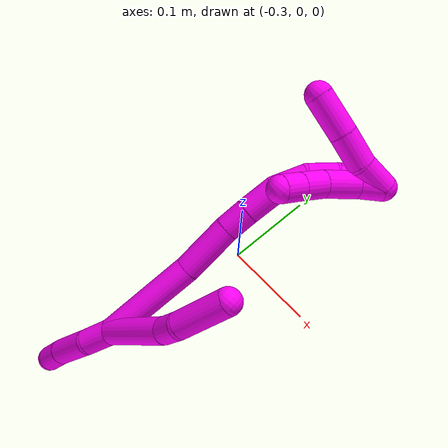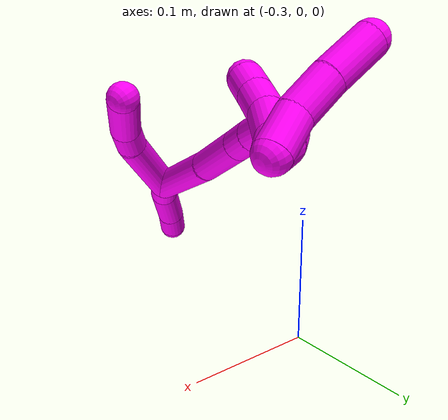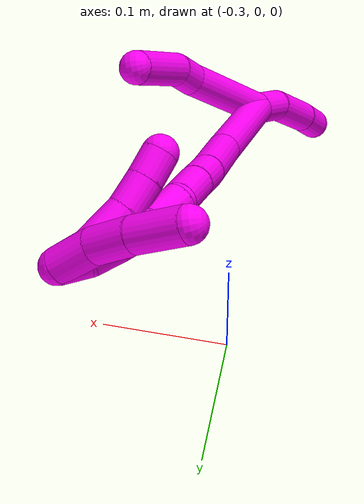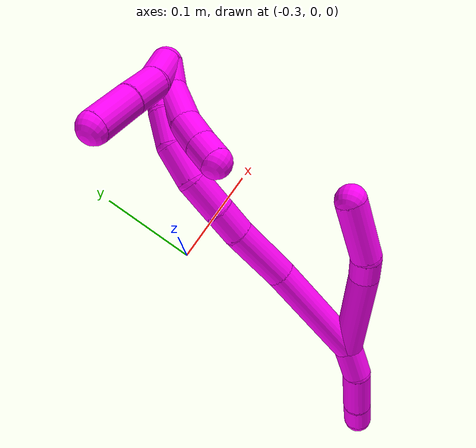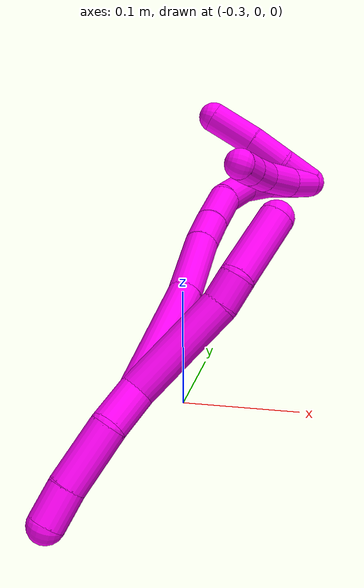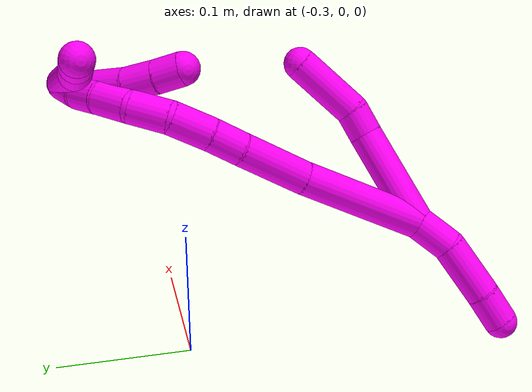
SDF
<sdf version="1.7">
 <world name="default">
  <model name="10">
   <static>0</static>
   <link name="10">
    <collision name="collision-cylinder-e_1_2_8">
     <pose>0.023771 0.024544 -0.017041 -2.17771 0.672024 -1.17742</pose>
     <geometry><cylinder><radius>0.0125</radius><length>0.076364</length></cylinder></geometry>
     <surface>
      <friction><ode><mu>1.16</mu><mu2>1.16</mu2><slip1>0</slip1><slip2>0</slip2></ode></friction>
      <contact><ode><kp>1e+06</kp><kd>1</kd><max_vel>0</max_vel><min_depth>0.001</min_depth></ode></contact>
     </surface>
    </collision>
    <visual name="visual-cylinder-e_1_2_8">
     <pose>0.023771 0.024544 -0.017041 -2.17771 0.672024 -1.17742</pose>
     <geometry><cylinder><radius>0.0125</radius><length>0.076364</length></cylinder></geometry>
     <material><ambient>1 0 0.964706 1</ambient></material>
    </visual>
    <collision name="collision-cylinder-e_2_8_9">
     <pose>0.054273 0.056824 -0.036768 -1.90487 0.687937 -0.932884</pose>
     <geometry><cylinder><radius>0.0125</radius><length>0.021201</length></cylinder></geometry>
     <surface>
      <friction><ode><mu>1.16</mu><mu2>1.16</mu2><slip1>0</slip1><slip2>0</slip2></ode></friction>
      <contact><ode><kp>1e+06</kp><kd>1</kd><max_vel>0</max_vel><min_depth>0.001</min_depth></ode></contact>
     </surface>
    </collision>
    <visual name="visual-cylinder-e_2_8_9">
     <pose>0.054273 0.056824 -0.036768 -1.90487 0.687937 -0.932884</pose>
     <geometry><cylinder><radius>0.0125</radius><length>0.021201</length></cylinder></geometry>
     <material><ambient>1 0 0.964706 1</ambient></material>
    </visual>
    <collision name="collision-cylinder-e_3_9_6">
     <pose>0.070155 0.087906 -0.047109 -1.88769 0.35658 -0.487594</pose>
     <geometry><cylinder><radius>0.0125</radius><length>0.052435</length></cylinder></geometry>
     <surface>
      <friction><ode><mu>1.16</mu><mu2>1.16</mu2><slip1>0</slip1><slip2>0</slip2></ode></friction>
      <contact><ode><kp>1e+06</kp><kd>1</kd><max_vel>0</max_vel><min_depth>0.001</min_depth></ode></contact>
     </surface>
    </collision>
    <visual name="visual-cylinder-e_3_9_6">
     <pose>0.070155 0.087906 -0.047109 -1.88769 0.35658 -0.487594</pose>
     <geometry><cylinder><radius>0.0125</radius><length>0.052435</length></cylinder></geometry>
     <material><ambient>1 0 0.964706 1</ambient></material>
    </visual>
    <collision name="collision-cylinder-e_1_2_10">
     <pose>-0.004088 -0.013258 0.005399 1.18404 -0.278167 -0.187726</pose>
     <geometry><cylinder><radius>0.0125</radius><length>0.029774</length></cylinder></geometry>
     <surface>
      <friction><ode><mu>1.16</mu><mu2>1.16</mu2><slip1>0</slip1><slip2>0</slip2></ode></friction>
      <contact><ode><kp>1e+06</kp><kd>1</kd><max_vel>0</max_vel><min_depth>0.001</min_depth></ode></contact>
     </surface>
    </collision>
    <visual name="visual-cylinder-e_1_2_10">
     <pose>-0.004088 -0.013258 0.005399 1.18404 -0.278167 -0.187726</pose>
     <geometry><cylinder><radius>0.0125</radius><length>0.029774</length></cylinder></geometry>
     <material><ambient>1 0 0.964706 1</ambient></material>
    </visual>
    <collision name="collision-cylinder-e_2_10_11">
     <pose>-0.020525 -0.043933 0.017381 1.2095 -0.585597 -0.410824</pose>
     <geometry><cylinder><radius>0.0125</radius><length>0.044686</length></cylinder></geometry>
     <surface>
      <friction><ode><mu>1.16</mu><mu2>1.16</mu2><slip1>0</slip1><slip2>0</slip2></ode></friction>
      <contact><ode><kp>1e+06</kp><kd>1</kd><max_vel>0</max_vel><min_depth>0.001</min_depth></ode></contact>
     </surface>
    </collision>
    <visual name="visual-cylinder-e_2_10_11">
     <pose>-0.020525 -0.043933 0.017381 1.2095 -0.585597 -0.410824</pose>
     <geometry><cylinder><radius>0.0125</radius><length>0.044686</length></cylinder></geometry>
     <material><ambient>1 0 0.964706 1</ambient></material>
    </visual>
    <collision name="collision-cylinder-e_3_11_5">
     <pose>-0.040237 -0.071452 0.026574 1.31785 -0.614624 -0.481977</pose>
     <geometry><cylinder><radius>0.0125</radius><length>0.02554</length></cylinder></geometry>
     <surface>
      <friction><ode><mu>1.16</mu><mu2>1.16</mu2><slip1>0</slip1><slip2>0</slip2></ode></friction>
      <contact><ode><kp>1e+06</kp><kd>1</kd><max_vel>0</max_vel><min_depth>0.001</min_depth></ode></contact>
     </surface>
    </collision>
    <visual name="visual-cylinder-e_3_11_5">
     <pose>-0.040237 -0.071452 0.026574 1.31785 -0.614624 -0.481977</pose>
     <geometry><cylinder><radius>0.0125</radius><length>0.02554</length></cylinder></geometry>
     <material><ambient>1 0 0.964706 1</ambient></material>
    </visual>
    <collision name="collision-cylinder-e_1_2_12">
     <pose>0.000236 0.04667 -0.007348 -1.72696 0.005003 -0.005852</pose>
     <geometry><cylinder><radius>0.0125</radius><length>0.09449</length></cylinder></geometry>
     <surface>
      <friction><ode><mu>1.16</mu><mu2>1.16</mu2><slip1>0</slip1><slip2>0</slip2></ode></friction>
      <contact><ode><kp>1e+06</kp><kd>1</kd><max_vel>0</max_vel><min_depth>0.001</min_depth></ode></contact>
     </surface>
    </collision>
    <visual name="visual-cylinder-e_1_2_12">
     <pose>0.000236 0.04667 -0.007348 -1.72696 0.005003 -0.005852</pose>
     <geometry><cylinder><radius>0.0125</radius><length>0.09449</length></cylinder></geometry>
     <material><ambient>1 0 0.964706 1</ambient></material>
    </visual>
    <collision name="collision-cylinder-e_2_12_13">
     <pose>0.002131 0.119609 -0.016094 -1.62395 0.062955 -0.066391</pose>
     <geometry><cylinder><radius>0.0125</radius><length>0.052718</length></cylinder></geometry>
     <surface>
      <friction><ode><mu>1.16</mu><mu2>1.16</mu2><slip1>0</slip1><slip2>0</slip2></ode></friction>
      <contact><ode><kp>1e+06</kp><kd>1</kd><max_vel>0</max_vel><min_depth>0.001</min_depth></ode></contact>
     </surface>
    </collision>
    <visual name="visual-cylinder-e_2_12_13">
     <pose>0.002131 0.119609 -0.016094 -1.62395 0.062955 -0.066391</pose>
     <geometry><cylinder><radius>0.0125</radius><length>0.052718</length></cylinder></geometry>
     <material><ambient>1 0 0.964706 1</ambient></material>
    </visual>
    <collision name="collision-cylinder-e_3_13_14">
     <pose>0.004741 0.158098 -0.019293 -1.71717 0.07691 -0.089065</pose>
     <geometry><cylinder><radius>0.0125</radius><length>0.024777</length></cylinder></geometry>
     <surface>
      <friction><ode><mu>1.16</mu><mu2>1.16</mu2><slip1>0</slip1><slip2>0</slip2></ode></friction>
      <contact><ode><kp>1e+06</kp><kd>1</kd><max_vel>0</max_vel><min_depth>0.001</min_depth></ode></contact>
     </surface>
    </collision>
    <visual name="visual-cylinder-e_3_13_14">
     <pose>0.004741 0.158098 -0.019293 -1.71717 0.07691 -0.089065</pose>
     <geometry><cylinder><radius>0.0125</radius><length>0.024777</length></cylinder></geometry>
     <material><ambient>1 0 0.964706 1</ambient></material>
    </visual>
    <collision name="collision-cylinder-e_4_14_15">
     <pose>0.006137 0.185685 -0.023942 -1.75405 0.028382 -0.034125</pose>
     <geometry><cylinder><radius>0.0125</radius><length>0.031271</length></cylinder></geometry>
     <surface>
      <friction><ode><mu>1.16</mu><mu2>1.16</mu2><slip1>0</slip1><slip2>0</slip2></ode></friction>
      <contact><ode><kp>1e+06</kp><kd>1</kd><max_vel>0</max_vel><min_depth>0.001</min_depth></ode></contact>
     </surface>
    </collision>
    <visual name="visual-cylinder-e_4_14_15">
     <pose>0.006137 0.185685 -0.023942 -1.75405 0.028382 -0.034125</pose>
     <geometry><cylinder><radius>0.0125</radius><length>0.031271</length></cylinder></geometry>
     <material><ambient>1 0 0.964706 1</ambient></material>
    </visual>
    <collision name="collision-cylinder-e_5_15_16">
     <pose>0.005099 0.21403 -0.033757 -2.06348 -0.100213 0.167287</pose>
     <geometry><cylinder><radius>0.0125</radius><length>0.029606</length></cylinder></geometry>
     <surface>
      <friction><ode><mu>1.16</mu><mu2>1.16</mu2><slip1>0</slip1><slip2>0</slip2></ode></friction>
      <contact><ode><kp>1e+06</kp><kd>1</kd><max_vel>0</max_vel><min_depth>0.001</min_depth></ode></contact>
     </surface>
    </collision>
    <visual name="visual-cylinder-e_5_15_16">
     <pose>0.005099 0.21403 -0.033757 -2.06348 -0.100213 0.167287</pose>
     <geometry><cylinder><radius>0.0125</radius><length>0.029606</length></cylinder></geometry>
     <material><ambient>1 0 0.964706 1</ambient></material>
    </visual>
    <collision name="collision-cylinder-e_6_16_17">
     <pose>0.002654 0.235916 -0.050543 -2.40476 -0.0726 0.187592</pose>
     <geometry><cylinder><radius>0.0125</radius><length>0.026587</length></cylinder></geometry>
     <surface>
      <friction><ode><mu>1.16</mu><mu2>1.16</mu2><slip1>0</slip1><slip2>0</slip2></ode></friction>
      <contact><ode><kp>1e+06</kp><kd>1</kd><max_vel>0</max_vel><min_depth>0.001</min_depth></ode></contact>
     </surface>
    </collision>
    <visual name="visual-cylinder-e_6_16_17">
     <pose>0.002654 0.235916 -0.050543 -2.40476 -0.0726 0.187592</pose>
     <geometry><cylinder><radius>0.0125</radius><length>0.026587</length></cylinder></geometry>
     <material><ambient>1 0 0.964706 1</ambient></material>
    </visual>
    <collision name="collision-cylinder-e_7_17_18">
     <pose>0.000805 0.250085 -0.069028 -2.59599 -0.087111 0.309069</pose>
     <geometry><cylinder><radius>0.0125</radius><length>0.020352</length></cylinder></geometry>
     <surface>
      <friction><ode><mu>1.16</mu><mu2>1.16</mu2><slip1>0</slip1><slip2>0</slip2></ode></friction>
      <contact><ode><kp>1e+06</kp><kd>1</kd><max_vel>0</max_vel><min_depth>0.001</min_depth></ode></contact>
     </surface>
    </collision>
    <visual name="visual-cylinder-e_7_17_18">
     <pose>0.000805 0.250085 -0.069028 -2.59599 -0.087111 0.309069</pose>
     <geometry><cylinder><radius>0.0125</radius><length>0.020352</length></cylinder></geometry>
     <material><ambient>1 0 0.964706 1</ambient></material>
    </visual>
    <collision name="collision-cylinder-e_8_18_1">
     <pose>0.000978 0.259398 -0.086884 -2.72637 0.105013 -0.489</pose>
     <geometry><cylinder><radius>0.0125</radius><length>0.020199</length></cylinder></geometry>
     <surface>
      <friction><ode><mu>1.16</mu><mu2>1.16</mu2><slip1>0</slip1><slip2>0</slip2></ode></friction>
      <contact><ode><kp>1e+06</kp><kd>1</kd><max_vel>0</max_vel><min_depth>0.001</min_depth></ode></contact>
     </surface>
    </collision>
    <visual name="visual-cylinder-e_8_18_1">
     <pose>0.000978 0.259398 -0.086884 -2.72637 0.105013 -0.489</pose>
     <geometry><cylinder><radius>0.0125</radius><length>0.020199</length></cylinder></geometry>
     <material><ambient>1 0 0.964706 1</ambient></material>
    </visual>
    <collision name="collision-cylinder-e_1_1_19">
     <pose>0.003556 0.256968 -0.086776 0.608764 0.133244 0.041914</pose>
     <geometry><cylinder><radius>0.0125</radius><length>0.022872</length></cylinder></geometry>
     <surface>
      <friction><ode><mu>1.16</mu><mu2>1.16</mu2><slip1>0</slip1><slip2>0</slip2></ode></friction>
      <contact><ode><kp>1e+06</kp><kd>1</kd><max_vel>0</max_vel><min_depth>0.001</min_depth></ode></contact>
     </surface>
    </collision>
    <visual name="visual-cylinder-e_1_1_19">
     <pose>0.003556 0.256968 -0.086776 0.608764 0.133244 0.041914</pose>
     <geometry><cylinder><radius>0.0125</radius><length>0.022872</length></cylinder></geometry>
     <material><ambient>1 0 0.964706 1</ambient></material>
    </visual>
    <collision name="collision-cylinder-e_2_19_20">
     <pose>0.011299 0.240755 -0.065644 0.688209 0.385898 0.139805</pose>
     <geometry><cylinder><radius>0.0125</radius><length>0.033073</length></cylinder></geometry>
     <surface>
      <friction><ode><mu>1.16</mu><mu2>1.16</mu2><slip1>0</slip1><slip2>0</slip2></ode></friction>
      <contact><ode><kp>1e+06</kp><kd>1</kd><max_vel>0</max_vel><min_depth>0.001</min_depth></ode></contact>
     </surface>
    </collision>
    <visual name="visual-cylinder-e_2_19_20">
     <pose>0.011299 0.240755 -0.065644 0.688209 0.385898 0.139805</pose>
     <geometry><cylinder><radius>0.0125</radius><length>0.033073</length></cylinder></geometry>
     <material><ambient>1 0 0.964706 1</ambient></material>
    </visual>
    <collision name="collision-cylinder-e_3_20_21">
     <pose>0.02374 0.223883 -0.046838 0.797299 0.557069 0.239746</pose>
     <geometry><cylinder><radius>0.0125</radius><length>0.023518</length></cylinder></geometry>
     <surface>
      <friction><ode><mu>1.16</mu><mu2>1.16</mu2><slip1>0</slip1><slip2>0</slip2></ode></friction>
      <contact><ode><kp>1e+06</kp><kd>1</kd><max_vel>0</max_vel><min_depth>0.001</min_depth></ode></contact>
     </surface>
    </collision>
    <visual name="visual-cylinder-e_3_20_21">
     <pose>0.02374 0.223883 -0.046838 0.797299 0.557069 0.239746</pose>
     <geometry><cylinder><radius>0.0125</radius><length>0.023518</length></cylinder></geometry>
     <material><ambient>1 0 0.964706 1</ambient></material>
    </visual>
    <collision name="collision-cylinder-e_4_21_4">
     <pose>0.035834 0.21059 -0.034114 0.819075 0.609243 0.27128</pose>
     <geometry><cylinder><radius>0.0125</radius><length>0.020537</length></cylinder></geometry>
     <surface>
      <friction><ode><mu>1.16</mu><mu2>1.16</mu2><slip1>0</slip1><slip2>0</slip2></ode></friction>
      <contact><ode><kp>1e+06</kp><kd>1</kd><max_vel>0</max_vel><min_depth>0.001</min_depth></ode></contact>
     </surface>
    </collision>
    <visual name="visual-cylinder-e_4_21_4">
     <pose>0.035834 0.21059 -0.034114 0.819075 0.609243 0.27128</pose>
     <geometry><cylinder><radius>0.0125</radius><length>0.020537</length></cylinder></geometry>
     <material><ambient>1 0 0.964706 1</ambient></material>
    </visual>
    <collision name="collision-cylinder-e_1_1_22">
     <pose>0.006566 0.264266 -0.082058 -0.058215 0.312061 -0.00916</pose>
     <geometry><cylinder><radius>0.0125</radius><length>0.029504</length></cylinder></geometry>
     <surface>
      <friction><ode><mu>1.16</mu><mu2>1.16</mu2><slip1>0</slip1><slip2>0</slip2></ode></friction>
      <contact><ode><kp>1e+06</kp><kd>1</kd><max_vel>0</max_vel><min_depth>0.001</min_depth></ode></contact>
     </surface>
    </collision>
    <visual name="visual-cylinder-e_1_1_22">
     <pose>0.006566 0.264266 -0.082058 -0.058215 0.312061 -0.00916</pose>
     <geometry><cylinder><radius>0.0125</radius><length>0.029504</length></cylinder></geometry>
     <material><ambient>1 0 0.964706 1</ambient></material>
    </visual>
    <collision name="collision-cylinder-e_2_22_23">
     <pose>0.013733 0.269453 -0.053025 -0.283171 0.167102 -0.023873</pose>
     <geometry><cylinder><radius>0.0125</radius><length>0.031723</length></cylinder></geometry>
     <surface>
      <friction><ode><mu>1.16</mu><mu2>1.16</mu2><slip1>0</slip1><slip2>0</slip2></ode></friction>
      <contact><ode><kp>1e+06</kp><kd>1</kd><max_vel>0</max_vel><min_depth>0.001</min_depth></ode></contact>
     </surface>
    </collision>
    <visual name="visual-cylinder-e_2_22_23">
     <pose>0.013733 0.269453 -0.053025 -0.283171 0.167102 -0.023873</pose>
     <geometry><cylinder><radius>0.0125</radius><length>0.031723</length></cylinder></geometry>
     <material><ambient>1 0 0.964706 1</ambient></material>
    </visual>
    <collision name="collision-cylinder-e_3_23_3">
     <pose>0.018122 0.278871 -0.019372 -0.264542 0.090444 -0.012041</pose>
     <geometry><cylinder><radius>0.0125</radius><length>0.038773</length></cylinder></geometry>
     <surface>
      <friction><ode><mu>1.16</mu><mu2>1.16</mu2><slip1>0</slip1><slip2>0</slip2></ode></friction>
      <contact><ode><kp>1e+06</kp><kd>1</kd><max_vel>0</max_vel><min_depth>0.001</min_depth></ode></contact>
     </surface>
    </collision>
    <visual name="visual-cylinder-e_3_23_3">
     <pose>0.018122 0.278871 -0.019372 -0.264542 0.090444 -0.012041</pose>
     <geometry><cylinder><radius>0.0125</radius><length>0.038773</length></cylinder></geometry>
     <material><ambient>1 0 0.964706 1</ambient></material>
    </visual>
    <collision name="collision-sphere-3">
     <pose>0.019873 0.283919 -0.000736 0 -0 0</pose>
     <geometry><sphere><radius>0.0125</radius></sphere></geometry>
     <surface>
      <friction><ode><mu>1.16</mu><mu2>1.16</mu2><slip1>0</slip1><slip2>0</slip2></ode></friction>
      <contact><ode><kp>1e+06</kp><kd>1</kd><max_vel>0</max_vel><min_depth>0.001</min_depth></ode></contact>
     </surface>
    </collision>
    <visual name="visual-sphere-3">
     <pose>0.019873 0.283919 -0.000736 0 -0 0</pose>
     <geometry><sphere><radius>0.0125</radius></sphere></geometry>
     <material><ambient>1 0 0.964706 1</ambient></material>
    </visual>
    <collision name="collision-sphere-23">
     <pose>0.016371 0.273823 -0.038007 0 -0 0</pose>
     <geometry><sphere><radius>0.0125</radius></sphere></geometry>
     <surface>
      <friction><ode><mu>1.16</mu><mu2>1.16</mu2><slip1>0</slip1><slip2>0</slip2></ode></friction>
      <contact><ode><kp>1e+06</kp><kd>1</kd><max_vel>0</max_vel><min_depth>0.001</min_depth></ode></contact>
     </surface>
    </collision>
    <visual name="visual-sphere-23">
     <pose>0.016371 0.273823 -0.038007 0 -0 0</pose>
     <geometry><sphere><radius>0.0125</radius></sphere></geometry>
     <material><ambient>1 0 0.964706 1</ambient></material>
    </visual>
    <collision name="collision-sphere-22">
     <pose>0.011095 0.265083 -0.068043 0 -0 0</pose>
     <geometry><sphere><radius>0.0125</radius></sphere></geometry>
     <surface>
      <friction><ode><mu>1.16</mu><mu2>1.16</mu2><slip1>0</slip1><slip2>0</slip2></ode></friction>
      <contact><ode><kp>1e+06</kp><kd>1</kd><max_vel>0</max_vel><min_depth>0.001</min_depth></ode></contact>
     </surface>
    </collision>
    <visual name="visual-sphere-22">
     <pose>0.011095 0.265083 -0.068043 0 -0 0</pose>
     <geometry><sphere><radius>0.0125</radius></sphere></geometry>
     <material><ambient>1 0 0.964706 1</ambient></material>
    </visual>
    <collision name="collision-sphere-4">
     <pose>0.04171 0.204438 -0.028363 0 -0 0</pose>
     <geometry><sphere><radius>0.0125</radius></sphere></geometry>
     <surface>
      <friction><ode><mu>1.16</mu><mu2>1.16</mu2><slip1>0</slip1><slip2>0</slip2></ode></friction>
      <contact><ode><kp>1e+06</kp><kd>1</kd><max_vel>0</max_vel><min_depth>0.001</min_depth></ode></contact>
     </surface>
    </collision>
    <visual name="visual-sphere-4">
     <pose>0.04171 0.204438 -0.028363 0 -0 0</pose>
     <geometry><sphere><radius>0.0125</radius></sphere></geometry>
     <material><ambient>1 0 0.964706 1</ambient></material>
    </visual>
    <collision name="collision-sphere-21">
     <pose>0.029957 0.216742 -0.039865 0 -0 0</pose>
     <geometry><sphere><radius>0.0125</radius></sphere></geometry>
     <surface>
      <friction><ode><mu>1.16</mu><mu2>1.16</mu2><slip1>0</slip1><slip2>0</slip2></ode></friction>
      <contact><ode><kp>1e+06</kp><kd>1</kd><max_vel>0</max_vel><min_depth>0.001</min_depth></ode></contact>
     </surface>
    </collision>
    <visual name="visual-sphere-21">
     <pose>0.029957 0.216742 -0.039865 0 -0 0</pose>
     <geometry><sphere><radius>0.0125</radius></sphere></geometry>
     <material><ambient>1 0 0.964706 1</ambient></material>
    </visual>
    <collision name="collision-sphere-20">
     <pose>0.017523 0.231024 -0.053811 0 -0 0</pose>
     <geometry><sphere><radius>0.0125</radius></sphere></geometry>
     <surface>
      <friction><ode><mu>1.16</mu><mu2>1.16</mu2><slip1>0</slip1><slip2>0</slip2></ode></friction>
      <contact><ode><kp>1e+06</kp><kd>1</kd><max_vel>0</max_vel><min_depth>0.001</min_depth></ode></contact>
     </surface>
    </collision>
    <visual name="visual-sphere-20">
     <pose>0.017523 0.231024 -0.053811 0 -0 0</pose>
     <geometry><sphere><radius>0.0125</radius></sphere></geometry>
     <material><ambient>1 0 0.964706 1</ambient></material>
    </visual>
    <collision name="collision-sphere-11">
     <pose>-0.032873 -0.061351 0.023963 0 -0 0</pose>
     <geometry><sphere><radius>0.0125</radius></sphere></geometry>
     <surface>
      <friction><ode><mu>1.16</mu><mu2>1.16</mu2><slip1>0</slip1><slip2>0</slip2></ode></friction>
      <contact><ode><kp>1e+06</kp><kd>1</kd><max_vel>0</max_vel><min_depth>0.001</min_depth></ode></contact>
     </surface>
    </collision>
    <visual name="visual-sphere-11">
     <pose>-0.032873 -0.061351 0.023963 0 -0 0</pose>
     <geometry><sphere><radius>0.0125</radius></sphere></geometry>
     <material><ambient>1 0 0.964706 1</ambient></material>
    </visual>
    <collision name="collision-sphere-10">
     <pose>-0.008176 -0.026515 0.010799 0 -0 0</pose>
     <geometry><sphere><radius>0.0125</radius></sphere></geometry>
     <surface>
      <friction><ode><mu>1.16</mu><mu2>1.16</mu2><slip1>0</slip1><slip2>0</slip2></ode></friction>
      <contact><ode><kp>1e+06</kp><kd>1</kd><max_vel>0</max_vel><min_depth>0.001</min_depth></ode></contact>
     </surface>
    </collision>
    <visual name="visual-sphere-10">
     <pose>-0.008176 -0.026515 0.010799 0 -0 0</pose>
     <geometry><sphere><radius>0.0125</radius></sphere></geometry>
     <material><ambient>1 0 0.964706 1</ambient></material>
    </visual>
    <collision name="collision-sphere-6">
     <pose>0.079307 0.111251 -0.054766 0 -0 0</pose>
     <geometry><sphere><radius>0.0125</radius></sphere></geometry>
     <surface>
      <friction><ode><mu>1.16</mu><mu2>1.16</mu2><slip1>0</slip1><slip2>0</slip2></ode></friction>
      <contact><ode><kp>1e+06</kp><kd>1</kd><max_vel>0</max_vel><min_depth>0.001</min_depth></ode></contact>
     </surface>
    </collision>
    <visual name="visual-sphere-6">
     <pose>0.079307 0.111251 -0.054766 0 -0 0</pose>
     <geometry><sphere><radius>0.0125</radius></sphere></geometry>
     <material><ambient>1 0 0.964706 1</ambient></material>
    </visual>
    <collision name="collision-sphere-9">
     <pose>0.061003 0.064561 -0.039453 0 -0 0</pose>
     <geometry><sphere><radius>0.0125</radius></sphere></geometry>
     <surface>
      <friction><ode><mu>1.16</mu><mu2>1.16</mu2><slip1>0</slip1><slip2>0</slip2></ode></friction>
      <contact><ode><kp>1e+06</kp><kd>1</kd><max_vel>0</max_vel><min_depth>0.001</min_depth></ode></contact>
     </surface>
    </collision>
    <visual name="visual-sphere-9">
     <pose>0.061003 0.064561 -0.039453 0 -0 0</pose>
     <geometry><sphere><radius>0.0125</radius></sphere></geometry>
     <material><ambient>1 0 0.964706 1</ambient></material>
    </visual>
    <collision name="collision-sphere-2">
     <geometry><sphere><radius>0.0125</radius></sphere></geometry>
     <surface>
      <friction><ode><mu>1.16</mu><mu2>1.16</mu2><slip1>0</slip1><slip2>0</slip2></ode></friction>
      <contact><ode><kp>1e+06</kp><kd>1</kd><max_vel>0</max_vel><min_depth>0.001</min_depth></ode></contact>
     </surface>
    </collision>
    <visual name="visual-sphere-2">
     <geometry><sphere><radius>0.0125</radius></sphere></geometry>
     <material><ambient>1 0 0.964706 1</ambient></material>
    </visual>
    <collision name="collision-sphere-19">
     <pose>0.005075 0.250486 -0.077478 0 -0 0</pose>
     <geometry><sphere><radius>0.0125</radius></sphere></geometry>
     <surface>
      <friction><ode><mu>1.16</mu><mu2>1.16</mu2><slip1>0</slip1><slip2>0</slip2></ode></friction>
      <contact><ode><kp>1e+06</kp><kd>1</kd><max_vel>0</max_vel><min_depth>0.001</min_depth></ode></contact>
     </surface>
    </collision>
    <visual name="visual-sphere-19">
     <pose>0.005075 0.250486 -0.077478 0 -0 0</pose>
     <geometry><sphere><radius>0.0125</radius></sphere></geometry>
     <material><ambient>1 0 0.964706 1</ambient></material>
    </visual>
    <collision name="collision-sphere-8">
     <pose>0.047542 0.049087 -0.034083 0 -0 0</pose>
     <geometry><sphere><radius>0.0125</radius></sphere></geometry>
     <surface>
      <friction><ode><mu>1.16</mu><mu2>1.16</mu2><slip1>0</slip1><slip2>0</slip2></ode></friction>
      <contact><ode><kp>1e+06</kp><kd>1</kd><max_vel>0</max_vel><min_depth>0.001</min_depth></ode></contact>
     </surface>
    </collision>
    <visual name="visual-sphere-8">
     <pose>0.047542 0.049087 -0.034083 0 -0 0</pose>
     <geometry><sphere><radius>0.0125</radius></sphere></geometry>
     <material><ambient>1 0 0.964706 1</ambient></material>
    </visual>
    <collision name="collision-sphere-5">
     <pose>-0.047601 -0.081553 0.029184 0 -0 0</pose>
     <geometry><sphere><radius>0.0125</radius></sphere></geometry>
     <surface>
      <friction><ode><mu>1.16</mu><mu2>1.16</mu2><slip1>0</slip1><slip2>0</slip2></ode></friction>
      <contact><ode><kp>1e+06</kp><kd>1</kd><max_vel>0</max_vel><min_depth>0.001</min_depth></ode></contact>
     </surface>
    </collision>
    <visual name="visual-sphere-5">
     <pose>-0.047601 -0.081553 0.029184 0 -0 0</pose>
     <geometry><sphere><radius>0.0125</radius></sphere></geometry>
     <material><ambient>1 0 0.964706 1</ambient></material>
    </visual>
    <collision name="collision-sphere-12">
     <pose>0.000473 0.093339 -0.014696 0 -0 0</pose>
     <geometry><sphere><radius>0.0125</radius></sphere></geometry>
     <surface>
      <friction><ode><mu>1.16</mu><mu2>1.16</mu2><slip1>0</slip1><slip2>0</slip2></ode></friction>
      <contact><ode><kp>1e+06</kp><kd>1</kd><max_vel>0</max_vel><min_depth>0.001</min_depth></ode></contact>
     </surface>
    </collision>
    <visual name="visual-sphere-12">
     <pose>0.000473 0.093339 -0.014696 0 -0 0</pose>
     <geometry><sphere><radius>0.0125</radius></sphere></geometry>
     <material><ambient>1 0 0.964706 1</ambient></material>
    </visual>
    <collision name="collision-sphere-13">
     <pose>0.003789 0.145879 -0.017491 0 -0 0</pose>
     <geometry><sphere><radius>0.0125</radius></sphere></geometry>
     <surface>
      <friction><ode><mu>1.16</mu><mu2>1.16</mu2><slip1>0</slip1><slip2>0</slip2></ode></friction>
      <contact><ode><kp>1e+06</kp><kd>1</kd><max_vel>0</max_vel><min_depth>0.001</min_depth></ode></contact>
     </surface>
    </collision>
    <visual name="visual-sphere-13">
     <pose>0.003789 0.145879 -0.017491 0 -0 0</pose>
     <geometry><sphere><radius>0.0125</radius></sphere></geometry>
     <material><ambient>1 0 0.964706 1</ambient></material>
    </visual>
    <collision name="collision-sphere-14">
     <pose>0.005693 0.170318 -0.021094 0 -0 0</pose>
     <geometry><sphere><radius>0.0125</radius></sphere></geometry>
     <surface>
      <friction><ode><mu>1.16</mu><mu2>1.16</mu2><slip1>0</slip1><slip2>0</slip2></ode></friction>
      <contact><ode><kp>1e+06</kp><kd>1</kd><max_vel>0</max_vel><min_depth>0.001</min_depth></ode></contact>
     </surface>
    </collision>
    <visual name="visual-sphere-14">
     <pose>0.005693 0.170318 -0.021094 0 -0 0</pose>
     <geometry><sphere><radius>0.0125</radius></sphere></geometry>
     <material><ambient>1 0 0.964706 1</ambient></material>
    </visual>
    <collision name="collision-sphere-15">
     <pose>0.00658 0.201052 -0.02679 0 -0 0</pose>
     <geometry><sphere><radius>0.0125</radius></sphere></geometry>
     <surface>
      <friction><ode><mu>1.16</mu><mu2>1.16</mu2><slip1>0</slip1><slip2>0</slip2></ode></friction>
      <contact><ode><kp>1e+06</kp><kd>1</kd><max_vel>0</max_vel><min_depth>0.001</min_depth></ode></contact>
     </surface>
    </collision>
    <visual name="visual-sphere-15">
     <pose>0.00658 0.201052 -0.02679 0 -0 0</pose>
     <geometry><sphere><radius>0.0125</radius></sphere></geometry>
     <material><ambient>1 0 0.964706 1</ambient></material>
    </visual>
    <collision name="collision-sphere-16">
     <pose>0.003618 0.227007 -0.040724 0 -0 0</pose>
     <geometry><sphere><radius>0.0125</radius></sphere></geometry>
     <surface>
      <friction><ode><mu>1.16</mu><mu2>1.16</mu2><slip1>0</slip1><slip2>0</slip2></ode></friction>
      <contact><ode><kp>1e+06</kp><kd>1</kd><max_vel>0</max_vel><min_depth>0.001</min_depth></ode></contact>
     </surface>
    </collision>
    <visual name="visual-sphere-16">
     <pose>0.003618 0.227007 -0.040724 0 -0 0</pose>
     <geometry><sphere><radius>0.0125</radius></sphere></geometry>
     <material><ambient>1 0 0.964706 1</ambient></material>
    </visual>
    <collision name="collision-sphere-17">
     <pose>0.00169 0.244825 -0.060362 0 -0 0</pose>
     <geometry><sphere><radius>0.0125</radius></sphere></geometry>
     <surface>
      <friction><ode><mu>1.16</mu><mu2>1.16</mu2><slip1>0</slip1><slip2>0</slip2></ode></friction>
      <contact><ode><kp>1e+06</kp><kd>1</kd><max_vel>0</max_vel><min_depth>0.001</min_depth></ode></contact>
     </surface>
    </collision>
    <visual name="visual-sphere-17">
     <pose>0.00169 0.244825 -0.060362 0 -0 0</pose>
     <geometry><sphere><radius>0.0125</radius></sphere></geometry>
     <material><ambient>1 0 0.964706 1</ambient></material>
    </visual>
    <collision name="collision-sphere-18">
     <pose>-8.1e-05 0.255346 -0.077694 0 -0 0</pose>
     <geometry><sphere><radius>0.0125</radius></sphere></geometry>
     <surface>
      <friction><ode><mu>1.16</mu><mu2>1.16</mu2><slip1>0</slip1><slip2>0</slip2></ode></friction>
      <contact><ode><kp>1e+06</kp><kd>1</kd><max_vel>0</max_vel><min_depth>0.001</min_depth></ode></contact>
     </surface>
    </collision>
    <visual name="visual-sphere-18">
     <pose>-8.1e-05 0.255346 -0.077694 0 -0 0</pose>
     <geometry><sphere><radius>0.0125</radius></sphere></geometry>
     <material><ambient>1 0 0.964706 1</ambient></material>
    </visual>
    <collision name="collision-sphere-1">
     <pose>0.002037 0.263449 -0.096074 0 -0 0</pose>
     <geometry><sphere><radius>0.0125</radius></sphere></geometry>
     <surface>
      <friction><ode><mu>1.16</mu><mu2>1.16</mu2><slip1>0</slip1><slip2>0</slip2></ode></friction>
      <contact><ode><kp>1e+06</kp><kd>1</kd><max_vel>0</max_vel><min_depth>0.001</min_depth></ode></contact>
     </surface>
    </collision>
    <visual name="visual-sphere-1">
     <pose>0.002037 0.263449 -0.096074 0 -0 0</pose>
     <geometry><sphere><radius>0.0125</radius></sphere></geometry>
     <material><ambient>1 0 0.964706 1</ambient></material>
    </visual>
    <inertial>
     <pose>0.011148 0.12996 -0.029359 0 -0 0</pose>
     <mass>0.75</mass>
     <inertia>
      <ixx>0.000128</ixx>
      <ixy>0</ixy>
      <ixz>0</ixz>
      <iyy>-2e-06</iyy>
      <iyz>0</iyz>
      <izz>-0.000151</izz>
     </inertia>
    </inertial>
   </link>
   <pose>-0.291621 -0.175216 0.085121 0.991916 -0.959875 -0.887619</pose>
  </model>
 </world>
</sdf>
